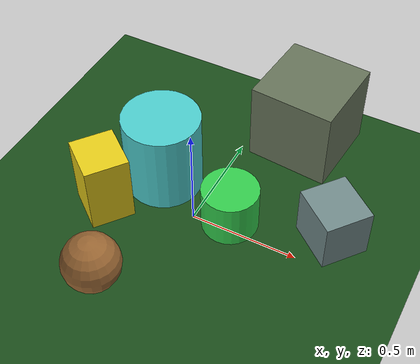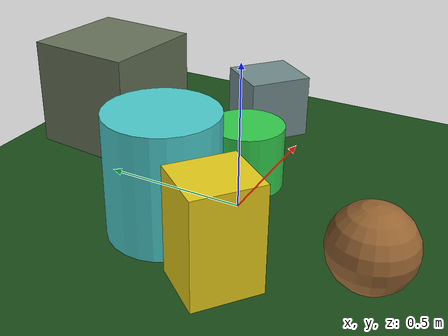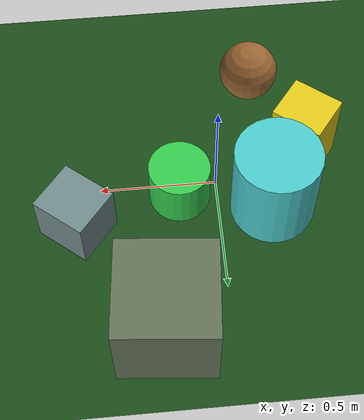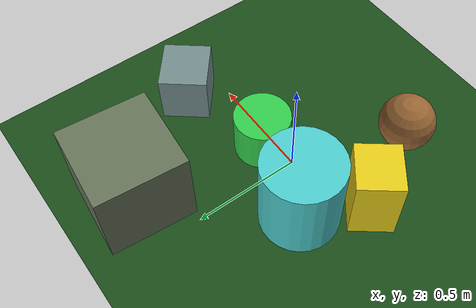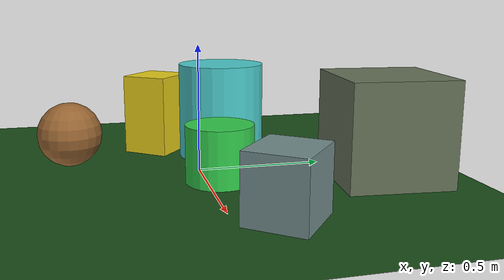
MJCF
<mujoco>
   <asset>
<texture type="skybox" builtin="gradient" rgb1="0.3 0.7 0.4" rgb2="0.9 0.5 0.7" width="500" height="500"/>
<texture name="checker_0" builtin="checker" rgb1="0.6 0.6 0.7" rgb2="0.3 0.5 0.4" width="500" height="500"/>
<texture name="flat_1" builtin="flat" rgb1="0.9 0.8 0.1" rgb2="0.9 0.8 0.1"  width="500" height="500"/>
<texture name="gradient_2" builtin="gradient" rgb1="0.7 0.0 0.0" rgb2="0.1 0.9 0.7" width="500" height="500"/>
<texture name="flat_3" builtin="flat" rgb1="0.3 0.8 0.8" rgb2="0.3 0.8 0.8"  width="500" height="500"/>
<texture name="flat_4" builtin="flat" rgb1="0.2 0.8 0.3" rgb2="0.2 0.8 0.3"  width="500" height="500"/>
<texture name="flat_5" builtin="flat" rgb1="0.6 0.4 0.2" rgb2="0.6 0.4 0.2"  width="500" height="500"/><material name="checker_0_mat" reflectance="0.27160237452820035" texrepeat="3 3" texture="checker_0" texuniform="false" />
<material name="flat_1_mat" reflectance="0.7989690665487561" texture="flat_1" texuniform="true"/>
<material name="gradient_2_mat" reflectance="0.41183106521228363" texture="gradient_2" texuniform="true"/>
<material name="flat_3_mat" reflectance="0.2187688495915031" texture="flat_3" texuniform="true"/>
<material name="flat_4_mat" reflectance="0.44136934307123765" texture="flat_4" texuniform="true"/>
<material name="flat_5_mat" reflectance="0.978228253870965" texture="flat_5" texuniform="true"/>
   </asset>

   <worldbody>
     <geom type="plane" size="1 1 0.1" rgba="0.1 0.3 0.1 1" />
<light pos="0.5936651342569339 0.5196822347318466 2" dir="0 0 -1" cutoff="90" diffuse="1 1 1" specular="1 1 1"/>
<light pos="0.23142407839073287 -0.18387524990795767 2" dir="0 0 -1" cutoff="90" diffuse="1 1 1" specular="1 1 1"/>
<geom type="box" pos="0.6 0.17 0.12" size="0.11 0.12 0.12" material="checker_0_mat" euler="0 0 51" />
<geom type="box" pos="-0.39 -0.12 0.17" size="0.1 0.11 0.17" material="flat_1_mat" euler="0 0 52" />
<geom type="box" pos="0.26 0.67 0.2" size="0.2 0.2 0.2" material="gradient_2_mat" euler="0 0 85" />
<geom type="cylinder" pos="-0.23 0.14 0.2" size="0.18 0.2 0.2" material="flat_3_mat" euler="0 0 82" />
<geom type="cylinder" pos="0.16 0.05 0.11" size="0.13 0.11 0.11" material="flat_4_mat" euler="0 0 30" />
<geom type="sphere" pos="-0.2 -0.5 0.13" size="0.13 0.13 0.13" material="flat_5_mat" euler="0 0 35" /><camera euler="60 0 180" fovy="60" name="camera1" pos="-0.2 -1.5 1"></camera>   </worldbody>
   <visual>
      <headlight diffuse="0.7 0.7 0.7"/>
   </visual>
</mujoco>
